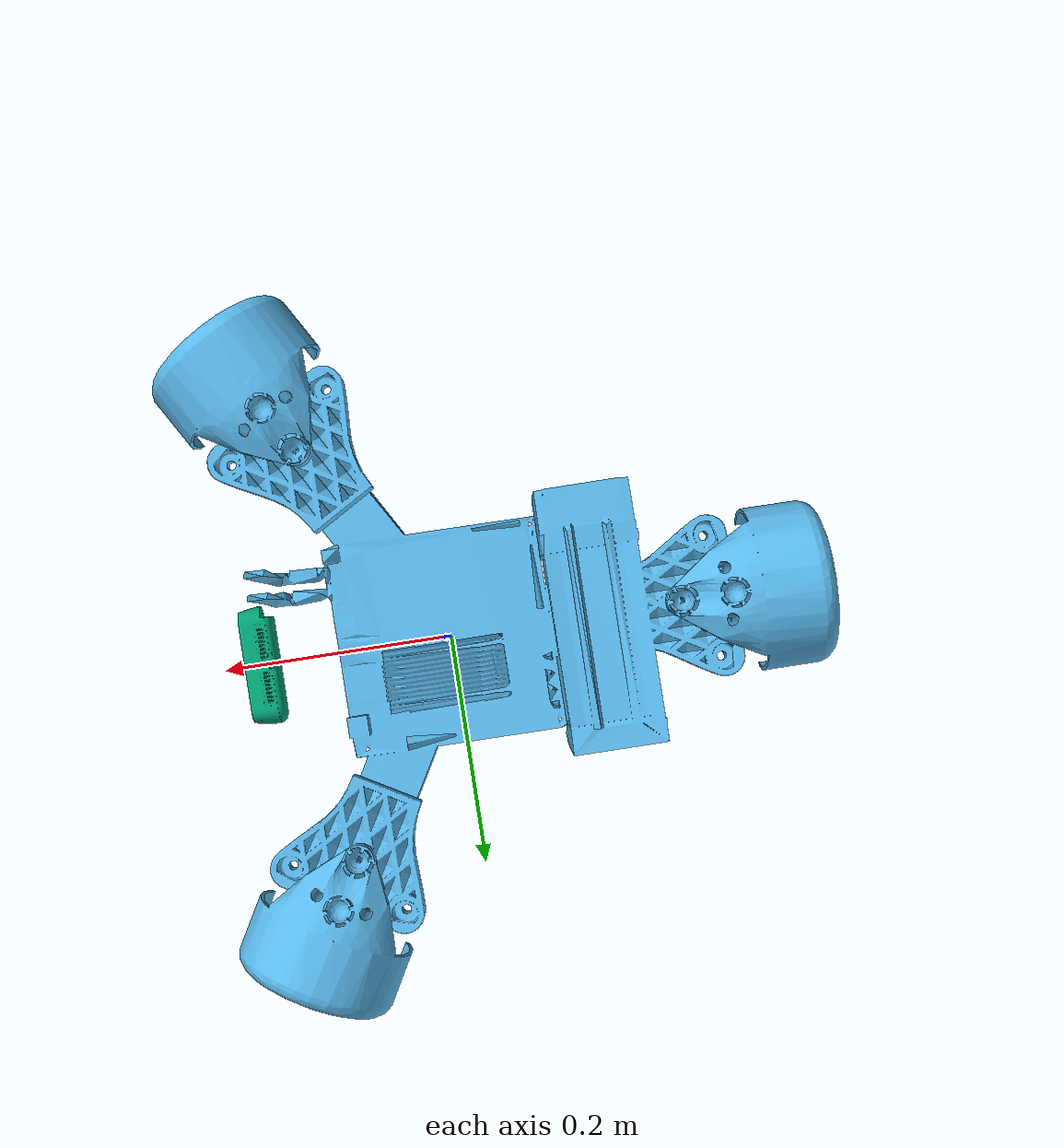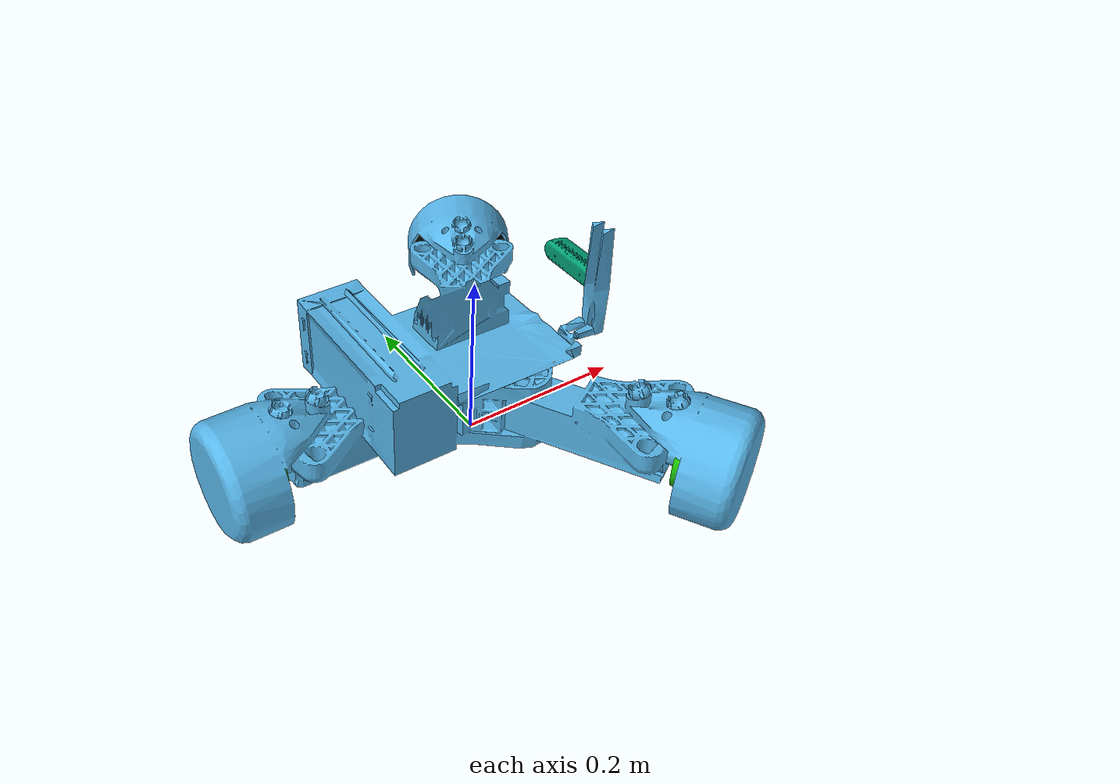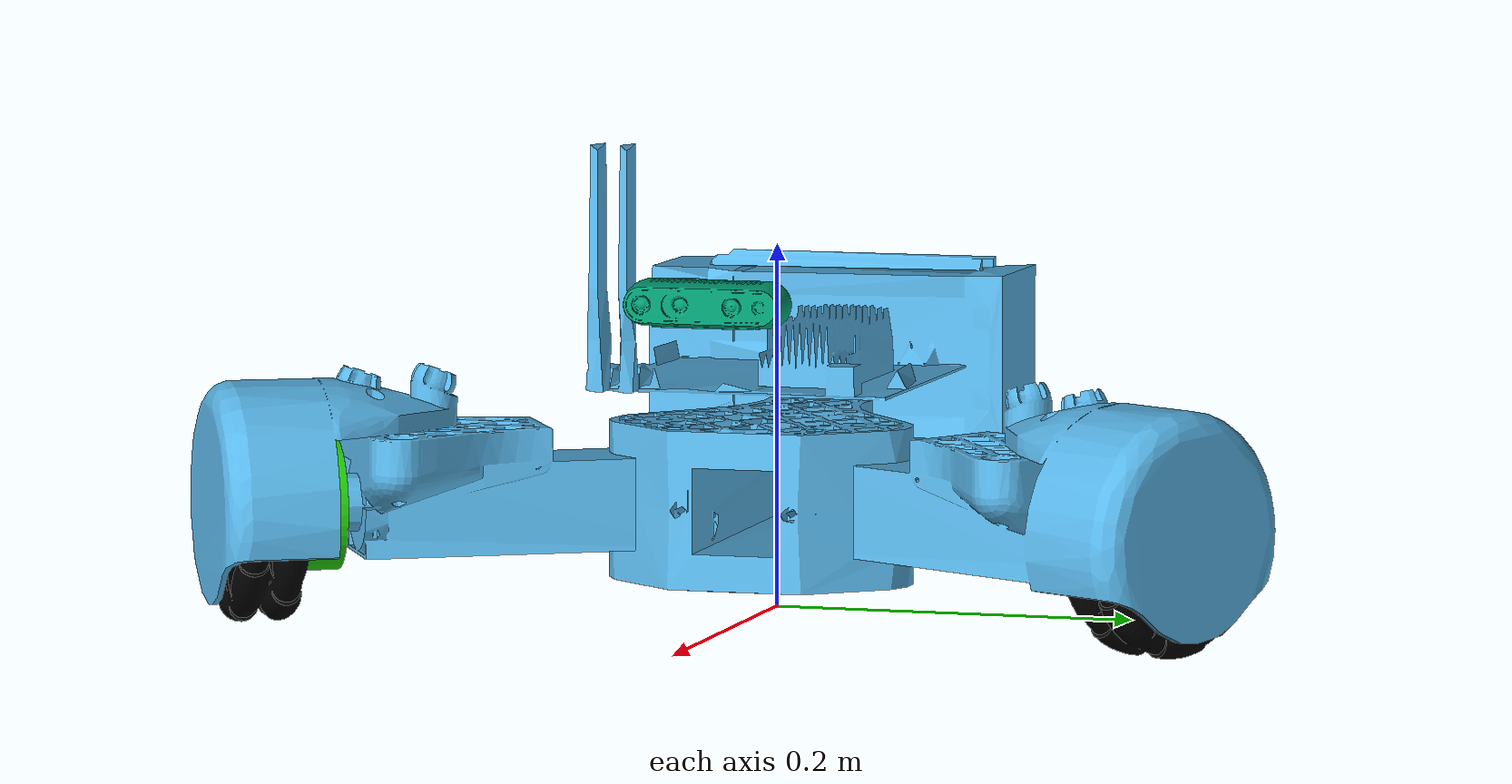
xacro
<?xml version="1.0"?>
<!-- Robot Reference Platform for Prototyping - Foldy Base version 01 -->
<robot name="airp1_foldy_base" xmlns:xacro="http://www.ros.org/wiki/xacro">

  <!-- Constants -->
  <xacro:property name="damp" value="0.7" />    <!-- damping coefficient -->

  <!-- Default Inertial -->
  <xacro:macro name="default_inertial" params="z_value i_value mass">
    <inertial>
      <origin xyz="0 0 ${z_value}" rpy="0 0 0"/>
      <mass value="${mass}" />
      <inertia ixx="${i_value}" ixy="0.0" ixz="0.0"
               iyy="${i_value}" iyz="0.0"
               izz="${i_value}" />
    </inertial>
  </xacro:macro>

  <!-- Dummy Link -->
  <link name="dummy_link">
  </link>

  <!-- Base Link -->
  <link name="base_link">
    <visual>
      <origin xyz="0 0 0" rpy="0 0 0"/>
      <geometry>
	    <mesh filename="package://airp1_foldy_base_description/meshes/visual/foldy_base_05_foldy_base_link.dae"/>
      </geometry>
    </visual>

    <collision>
      <origin xyz="0 0 0" rpy="0 0 0"/>
      <geometry>
	    <mesh filename="package://airp1_foldy_base_description/meshes/collision/foldy_base_05_foldy_base_link_collision.stl"/>
      </geometry>
    </collision>

    <inertial>
      <origin xyz="0 0 0" rpy="0 0 0"/>
      <mass value="1"/>
      <inertia
	  ixx="1.0" ixy="0.0" ixz="0.0"
	  iyy="1.0" iyz="0.0"
	  izz="1.0"/>
    </inertial>
  </link>

  <!-- Joint between Dummy Link and Base Link -->
  <joint name="dummy_base_joint" type="fixed">
    <parent link="dummy_link"/>
    <child link="base_link"/>
    <origin xyz="0 0 -0.02" rpy="0 0 0"/>
    <axis xyz="1 0 0"/>
  </joint>

  <!-- Realsense Camera Base Link -->
  <link name="rs_cam_base_link">
    <visual>
      <origin xyz="0 0 0" rpy="${pi/2} 0 ${pi/2}"/>
      <geometry>
            <mesh filename="package://airp1_foldy_base_description/meshes/d435.dae"/>
      </geometry>
    </visual>

    <collision>
      <origin xyz="0 0 0" rpy="0 0 0"/>
      <geometry>
            <mesh filename="package://airp1_foldy_base_description/meshes/d435.dae"/>
      </geometry>
    </collision>

    <inertial>
      <origin xyz="0 0 0" rpy="0 0 0"/>
      <mass value="1"/>
      <inertia
          ixx="1.0" ixy="0.0" ixz="0.0"
          iyy="1.0" iyz="0.0"
          izz="1.0"/>
    </inertial>
  </link>

  <!-- Joint between Base Link and Realsense Camera Base Link -->
  <joint name="base_rs_cam_base_joint" type="fixed">
    <parent link="base_link"/>
    <child link="rs_cam_base_link"/>
    <origin xyz="0.15 0 0.20" rpy="0 0 0"/>
    <axis xyz="1 0 0"/>
  </joint>

  <!-- Joint between Base Link and Left Omniwheel Link -->
  <joint name="base_left_omniwheel_joint" type="continuous">
    <parent link="base_link"/>
    <child link="left_omniwheel_link"/>
    <origin xyz="0.145211 0.251292 0.084925" rpy="0 0 ${pi/3}"/>
    <axis xyz="1 0 0"/>
    <dynamics damping="${damp}"/>
    <limit effort="100.0" velocity="0.5"/>
  </joint>

  <!-- Left Omniwheel Link -->
  <link name="left_omniwheel_link">
    <visual>
      <origin xyz="0 0 0" rpy="0 0 ${pi/2}"/>
      <geometry>
	    <mesh filename="package://airp1_foldy_base_description/meshes/visual/foldy_base_05_omniwheel_link.dae"/>
      </geometry>
    </visual>

    <collision>
      <origin xyz="0 0 0" rpy="0 0 ${pi/2}"/>
      <geometry>
	    <mesh filename="package://airp1_foldy_base_description/meshes/collision/foldy_base_05_omniwheel_link_collision.stl"/>
      </geometry>
    </collision>

    <inertial>
      <origin xyz="0 0 0" rpy="0 0 0"/>
      <mass value="1"/>
      <inertia
	  ixx="1.0" ixy="0.0" ixz="0.0"
	  iyy="1.0" iyz="0.0"
	  izz="1.0"/>
    </inertial>
  </link>

  <!-- Joint between Base Link and Right Omniwheel Link -->
  <joint name="base_right_omniwheel_joint" type="continuous">
    <parent link="base_link"/>
    <child link="right_omniwheel_link"/>
    <origin xyz="0.145211 -0.251292 0.084925" rpy="0 0 -${pi/3}"/>
    <axis xyz="1 0 0"/>
    <dynamics damping="${damp}"/>
    <limit effort="100.0" velocity="0.5"/>
  </joint>

  <!-- Right Omniwheel Link -->
  <link name="right_omniwheel_link">
    <visual>
      <origin xyz="0 0 0" rpy="0 0 ${pi/2}"/>
      <geometry>
	    <mesh filename="package://airp1_foldy_base_description/meshes/visual/foldy_base_05_omniwheel_link.dae"/>
      </geometry>
    </visual>

    <collision>
      <origin xyz="0 0 0" rpy="0 0 ${pi/2}"/>
      <geometry>
	    <mesh filename="package://airp1_foldy_base_description/meshes/collision/foldy_base_05_omniwheel_link_collision.stl"/>
      </geometry>
    </collision>

    <inertial>
      <origin xyz="0 0 0" rpy="0 0 0"/>
      <mass value="1"/>
      <inertia
	  ixx="1.0" ixy="0.0" ixz="0.0"
	  iyy="1.0" iyz="0.0"
	  izz="1.0"/>
    </inertial>
  </link>

  <!-- Joint between Base Link and Back Omniwheel Link -->
  <joint name="base_back_omniwheel_joint" type="continuous">
    <parent link="base_link"/>
    <child link="back_omniwheel_link"/>
    <origin xyz="-0.290404 -0.000073 0.084925" rpy="0 0 -${pi/2}"/>
    <axis xyz="0 -1 0"/>
    <dynamics damping="${damp}"/>
    <limit effort="100.0" velocity="0.5"/>
  </joint>

  <!-- Back Omniwheel Link -->
  <link name="back_omniwheel_link">
    <visual>
      <origin xyz="0 0 0" rpy="0 0 0"/>
      <geometry>
	    <mesh filename="package://airp1_foldy_base_description/meshes/visual/foldy_base_05_omniwheel_link.dae"/>
      </geometry>
    </visual>

    <collision>
      <origin xyz="0 0 0" rpy="0 0 0"/>
      <geometry>
	    <mesh filename="package://airp1_foldy_base_description/meshes/collision/foldy_base_05_omniwheel_link_collision.stl"/>
      </geometry>
    </collision>

    <inertial>
      <origin xyz="0 0 0" rpy="0 0 0"/>
      <mass value="1"/>
      <inertia
	  ixx="1.0" ixy="0.0" ixz="0.0"
	  iyy="1.0" iyz="0.0"
	  izz="1.0"/>
    </inertial>
  </link>

</robot>
